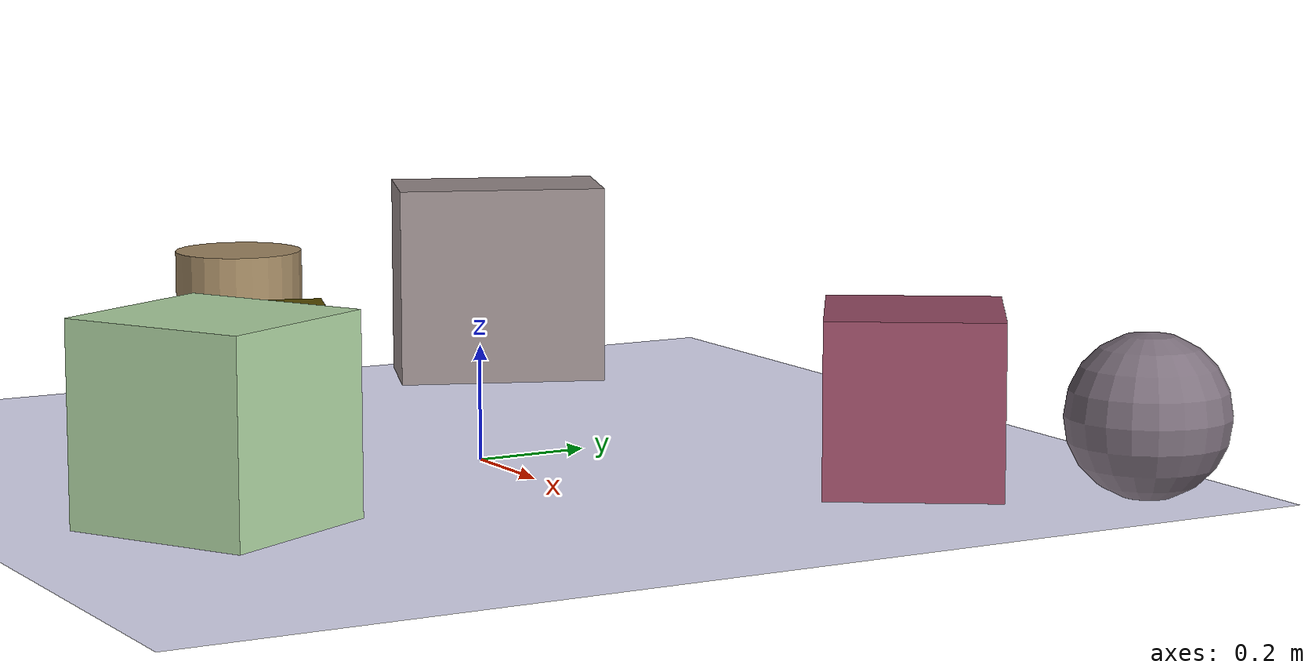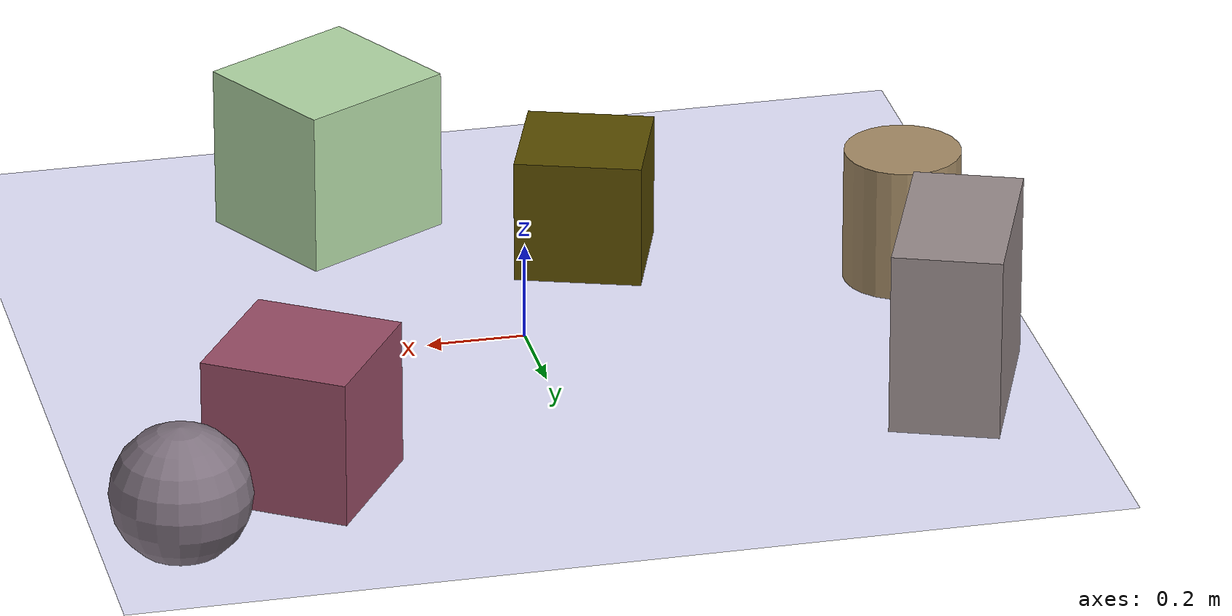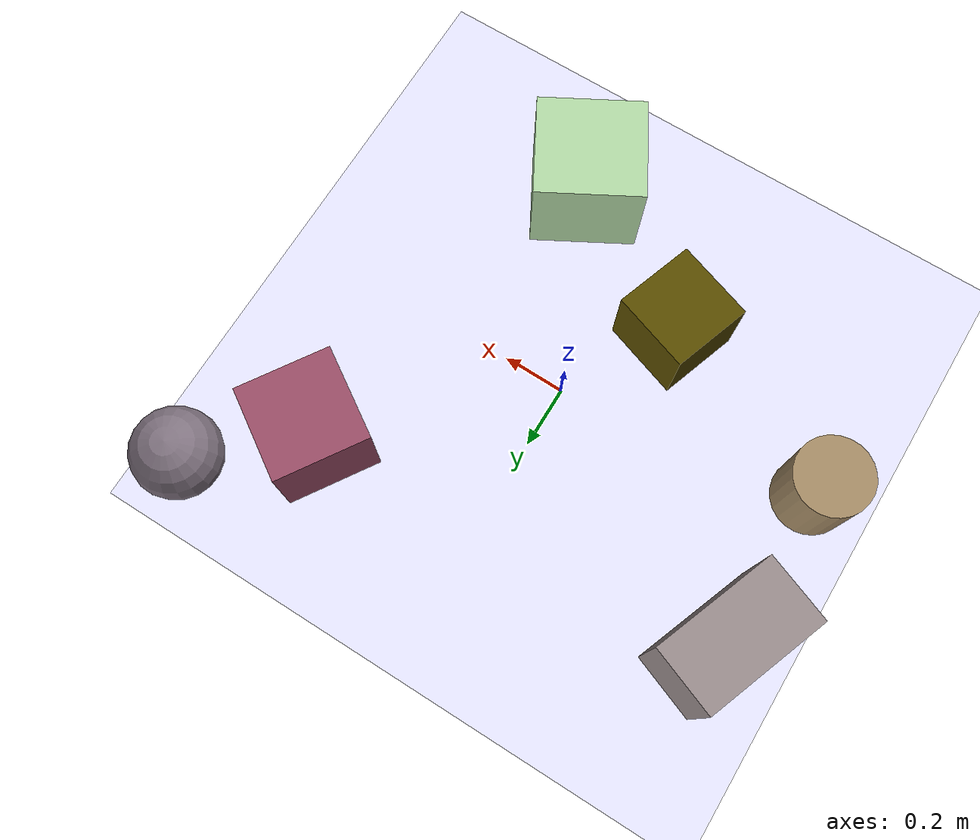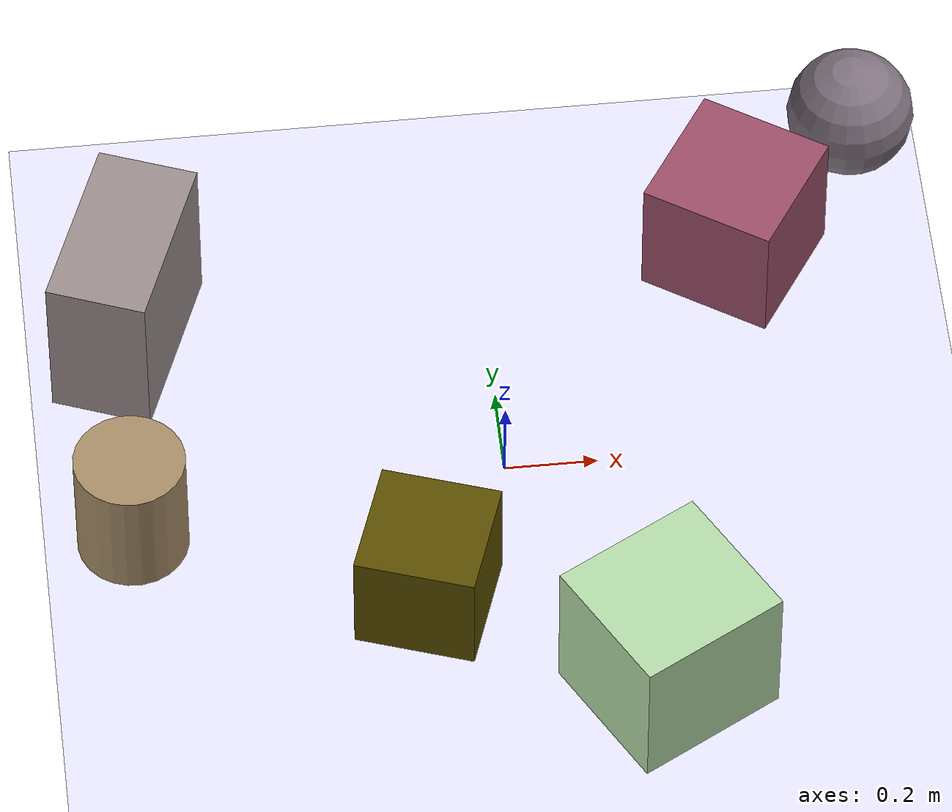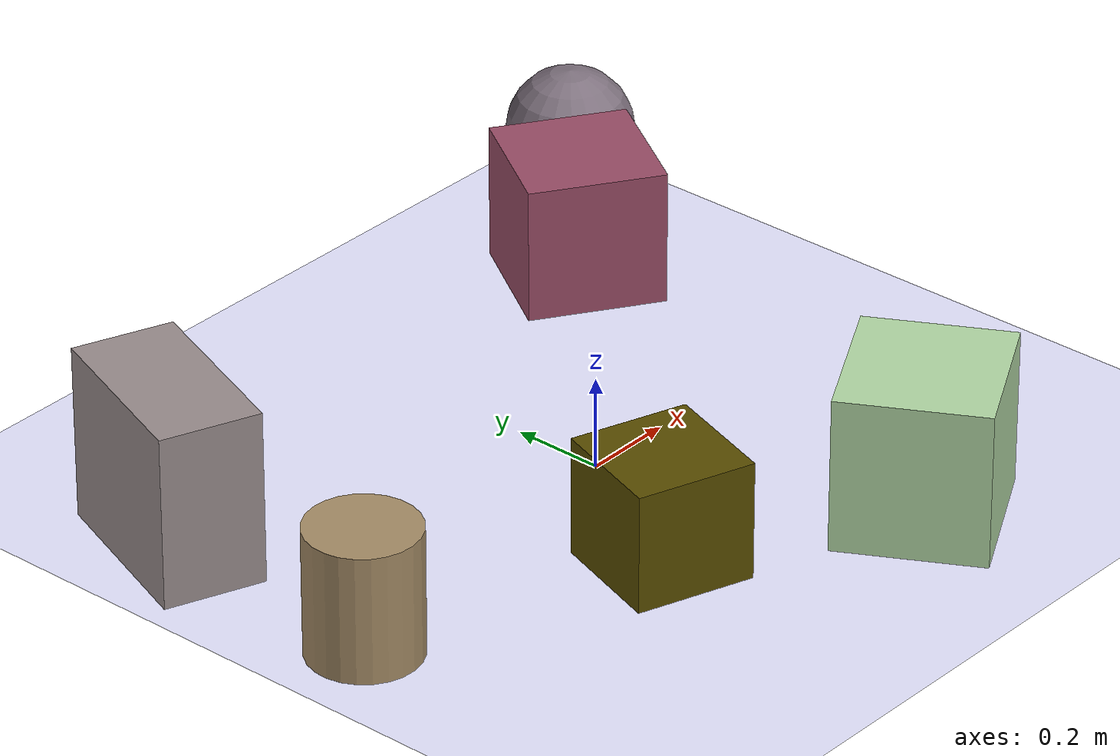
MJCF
<mujoco>
   <asset>
<texture type="skybox" builtin="gradient" rgb1="0.7 0.1 1.0" rgb2="0.6 0.4 0.5" width="500" height="500"/>
<texture name="checker_0" builtin="checker" rgb1="1.0 0.4 0.3" rgb2="0.3 0.7 0.5" width="500" height="500"/>
<texture name="checker_1" builtin="checker" rgb1="0.7 0.5 0.0" rgb2="0.0 0.1 0.0" width="500" height="500"/>
<texture name="gradient_2" builtin="gradient" rgb1="0.5 0.7 0.9" rgb2="0.9 1.0 0.4" width="500" height="500"/>
<texture name="checker_3" builtin="checker" rgb1="0.6 0.5 0.4" rgb2="0.6 0.1 0.4" width="500" height="500"/>
<texture name="gradient_4" builtin="gradient" rgb1="0.4 0.5 0.5" rgb2="0.8 0.6 0.6" width="500" height="500"/>
<texture name="gradient_5" builtin="gradient" rgb1="0.7 0.5 0.6" rgb2="0.3 0.4 0.4" width="500" height="500"/><material name="checker_0_mat" reflectance="0.01767034800104106" texrepeat="10 10" texture="checker_0" texuniform="false" />
<material name="checker_1_mat" reflectance="0.9631105972587435" texrepeat="5 5" texture="checker_1" texuniform="false" />
<material name="gradient_2_mat" reflectance="0.6369106064419467" texture="gradient_2" texuniform="true"/>
<material name="checker_3_mat" reflectance="0.9539796954166071" texrepeat="6 6" texture="checker_3" texuniform="false" />
<material name="gradient_4_mat" reflectance="0.2642120464808555" texture="gradient_4" texuniform="true"/>
<material name="gradient_5_mat" reflectance="0.8375686939743023" texture="gradient_5" texuniform="true"/>
   </asset>

   <worldbody>
     <geom type="plane" size="1 1 0.1" rgba="0.9 0.9 1.0 1" />
<light pos="0.31675623784830664 -0.46647173416279064 2" dir="0 0 -1" cutoff="90" diffuse="1 1 1" specular="1 1 1"/>
<light pos="0.8605288095094796 -0.9197581097911125 2" dir="0 0 -1" cutoff="90" diffuse="1 1 1" specular="1 1 1"/>
<geom type="cylinder" pos="-0.81 -0.11 0.14" size="0.12 0.14 0.14" material="checker_0_mat" euler="0 0 20" />
<geom type="box" pos="-0.2 -0.34 0.13" size="0.13 0.13 0.13" material="checker_1_mat" euler="0 0 71" />
<geom type="box" pos="0.28 -0.61 0.17" size="0.17 0.16 0.17" material="gradient_2_mat" euler="0 0 29" />
<geom type="box" pos="0.56 0.53 0.15" size="0.15 0.15 0.15" material="checker_3_mat" euler="0 0 57" />
<geom type="box" pos="-0.78 0.43 0.19" size="0.2 0.11 0.19" material="gradient_4_mat" euler="0 0 69" />
<geom type="sphere" pos="0.85 0.8 0.14" size="0.14 0.14 0.14" material="gradient_5_mat" euler="0 0 6" /><camera euler="60 0 180" fovy="60" name="camera1" pos="-0.2 -1.5 1"></camera>   </worldbody>
   <visual>
      <headlight diffuse="0.7 0.7 0.7"/>
   </visual>
</mujoco>
